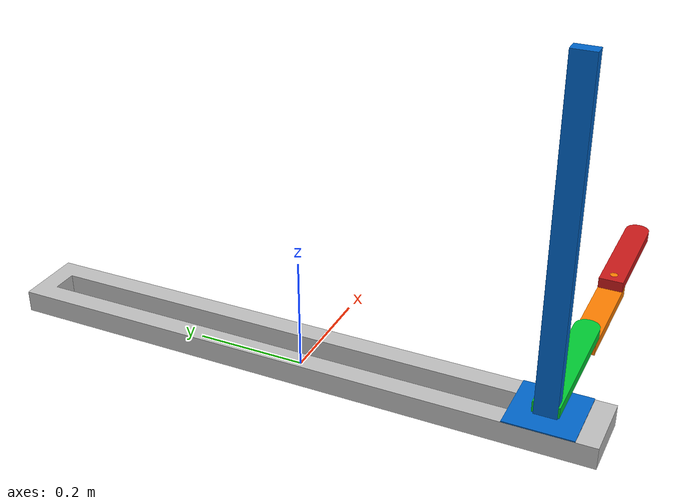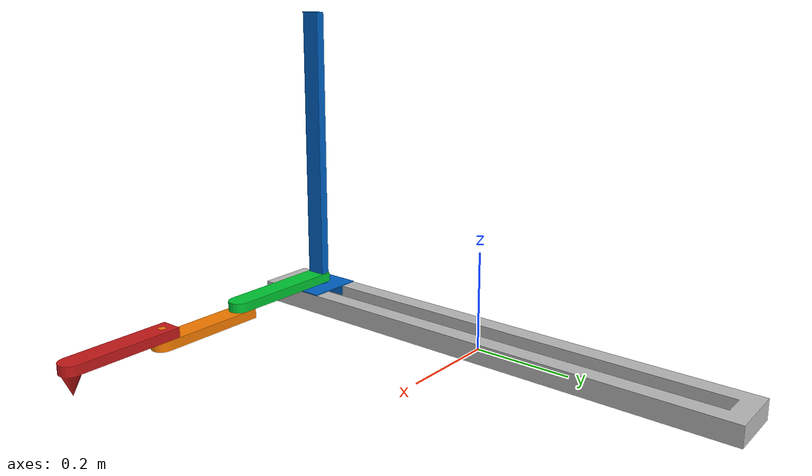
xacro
<?xml version="1.0"?>
<robot xmlns:xacro="http://www.ros.org/wiki/xacro" name="scara_fab_station">
    <xacro:arg name="initial_positions_file" default="initial_positions.yaml" />

    <!-- Import scara_fab_station urdf file -->
    <xacro:include filename="$(find scara_fab_station_description)/urdf/scara_fab_station.urdf" />

    <!-- Import control_xacro -->
    <xacro:include filename="scara_fab_station.ros2_control.xacro" />

    <xacro:scara_fab_station_ros2_control name="FakeSystem" initial_positions_file="$(arg initial_positions_file)"/>

</robot>

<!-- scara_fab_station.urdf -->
<robot
  name="scara_fab_station">
  <!-- Base footprint link - dummy link with no inertia -->
  <link name="base_footprint">
  </link>

  <!-- Joint connecting base_footprint to base_link at the same location -->
  <joint name="base_footprint_joint" type="fixed">
    <origin xyz="0 0 0" rpy="0 0 0"/>
    <parent link="base_footprint"/>
    <child link="base_link"/>
  </joint>

  <link
    name="base_link">
    <inertial>
      <origin
        xyz="-5.5511E-17 5.5511E-17 0.02"
        rpy="0 0 0" />
      <mass
        value="9.0157" />
      <inertia
        ixx="0.94193"
        ixy="-8.2117E-18"
        ixz="7.1601E-20"
        iyy="0.017146"
        iyz="-7.3197E-19"
        izz="0.95668" />
    </inertial>
    <visual>
      <origin
        xyz="0 0 0"
        rpy="0 0 0" />
      <geometry>
        <mesh
          filename="file:///home/shevi/sr_ws/src/scara_fab_station_description/meshes/base_link.STL" />
      </geometry>
      <material name="silver">
        <color rgba="0.75 0.75 0.75 1" />
      </material>
    </visual>
    <collision>
      <origin
        xyz="0 0 0"
        rpy="0 0 0" />
      <geometry>
        <mesh
          filename="file:///home/shevi/sr_ws/src/scara_fab_station_description/meshes/base_link.STL" />
      </geometry>
    </collision>
  </link>
  <link
    name="link_y">
    <inertial>
      <origin
        xyz="-0.032174 0.06 0.27794"
        rpy="0 0 0" />
      <mass
        value="4.1997" />
      <inertia
        ixx="0.14707"
        ixy="-4.471E-17"
        ixz="0.00096519"
        iyy="0.14663"
        iyz="1.1349E-16"
        izz="0.0014187" />
    </inertial>
    <visual>
      <origin
        xyz="0 0 0"
        rpy="0 0 0" />
      <geometry>
        <mesh
          filename="file:///home/shevi/sr_ws/src/scara_fab_station_description/meshes/link_y.STL" />
      </geometry>
      <material name="blue">
        <color rgba="0.0 0.4 0.8 1" />
      </material>
    </visual>
    <collision>
      <origin
        xyz="0 0 0"
        rpy="0 0 0" />
      <geometry>
        <mesh
          filename="file:///home/shevi/sr_ws/src/scara_fab_station_description/meshes/link_y.STL" />
      </geometry>
    </collision>
  </link>
  <joint
    name="joint_y"
    type="prismatic">
    <origin
      xyz="0.023 -0.503 0.04"
      rpy="0 0 0" />
    <parent
      link="base_link" />
    <child
      link="link_y" />
    <axis
      xyz="0 1 0" />
    <limit
      lower="0"
      upper="0.886"
      effort="6"
      velocity="1.5" />
  </joint>
  <link
    name="link_z">
    <inertial>
      <origin
        xyz="0.12281 -0.02 0.012695"
        rpy="0 0 0" />
      <mass
        value="0.23602" />
      <inertia
        ixx="5.0275E-05"
        ixy="-1.5756E-19"
        ixz="7.5124E-06"
        iyy="0.0012456"
        iyz="-1.5474E-20"
        izz="0.0012773" />
    </inertial>
    <visual>
      <origin
        xyz="0 0 0"
        rpy="0 0 0" />
      <geometry>
        <mesh
          filename="file:///home/shevi/sr_ws/src/scara_fab_station_description/meshes/link_z.STL" />
      </geometry>
      <material name="green">
        <color rgba="0.0 0.8 0.2 1" />
      </material>
    </visual>
    <collision>
      <origin
        xyz="0 0 0"
        rpy="0 0 0" />
      <geometry>
        <mesh
          filename="file:///home/shevi/sr_ws/src/scara_fab_station_description/meshes/link_z.STL" />
      </geometry>
    </collision>
  </link>
  <joint
    name="joint_z"
    type="prismatic">
    <origin
      xyz="-0.023 0.08 0.002"
      rpy="0 0 0" />
    <parent
      link="link_y" />
    <child
      link="link_z" />
    <axis
      xyz="0 0 1" />
    <limit
      lower="0"
      upper="0.57"
      effort="3"
      velocity="1.5" />
  </joint>
  <link
    name="link_1">
    <inertial>
      <origin
        xyz="0.097759 -8.9928E-14 0.010327"
        rpy="0 0 0" />
      <mass
        value="0.22058" />
      <inertia
        ixx="4.692E-05"
        ixy="-9.4787E-16"
        ixz="-6.939E-06"
        iyy="0.0010285"
        iyz="-6.5105E-18"
        izz="0.0010579" />
    </inertial>
    <visual>
      <origin
        xyz="0 0 0"
        rpy="0 0 0" />
      <geometry>
        <mesh
          filename="file:///home/shevi/sr_ws/src/scara_fab_station_description/meshes/link_1.STL" />
      </geometry>
      <material name="orange">
        <color rgba="1.0 0.5 0.0 1" />
      </material>
    </visual>
    <collision>
      <origin
        xyz="0 0 0"
        rpy="0 0 0" />
      <geometry>
        <mesh
          filename="file:///home/shevi/sr_ws/src/scara_fab_station_description/meshes/link_1.STL" />
      </geometry>
    </collision>
  </link>
  <joint
    name="joint_1"
    type="revolute">
    <origin
      xyz="0.227 -0.02 -0.017"
      rpy="0 0 0" />
    <parent
      link="link_z" />
    <child
      link="link_1" />
    <axis
      xyz="0 0 1" />
    <limit
      lower="-2.8"
      upper="2.8"
      effort="3"
      velocity="3" />
  </joint>
  <link
    name="link_2">
    <inertial>
      <origin
        xyz="0.10412 6.3975E-06 -0.01173"
        rpy="0 0 0" />
      <mass
        value="0.23621" />
      <inertia
        ixx="5.592E-05"
        ixy="-1.3581E-07"
        ixz="3.672E-05"
        iyy="0.0011726"
        iyz="2.9498E-08"
        izz="0.0011952" />
    </inertial>
    <visual>
      <origin
        xyz="0 0 0"
        rpy="0 0 0" />
      <geometry>
        <mesh
          filename="file:///home/shevi/sr_ws/src/scara_fab_station_description/meshes/link_2.STL" />
      </geometry>
      <material name="red">
        <color rgba="0.8 0.1 0.1 1" />
      </material>
    </visual>
    <collision>
      <origin
        xyz="0 0 0"
        rpy="0 0 0" />
      <geometry>
        <mesh
          filename="file:///home/shevi/sr_ws/src/scara_fab_station_description/meshes/link_2.STL" />
      </geometry>
    </collision>
  </link>
  <joint
    name="joint_2"
    type="revolute">
    <origin
      xyz="0.194 0 0.04"
      rpy="0 0 0" />
    <parent
      link="link_1" />
    <child
      link="link_2" />
    <axis
      xyz="0 0 -1" />
    <limit
      lower="-2.85"
      upper="2.85"
      effort="3"
      velocity="3" />
  </joint>
</robot>
